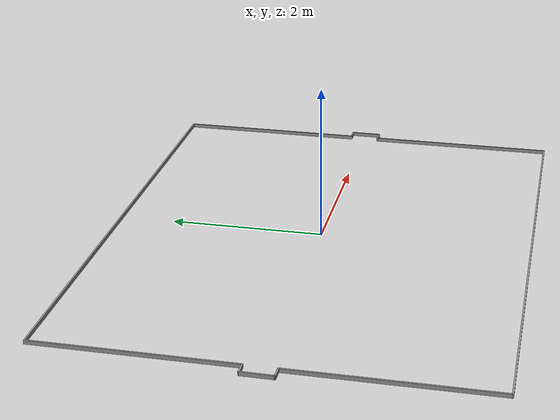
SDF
<?xml version='1.0'?>
<sdf version='1.6'>
  <model name='vsss_field_goal'>
    <pose frame=''>-0.001537 -5e-06 0 0 -0 0</pose>
    <link name='Wall_0'>
      <collision name='Wall_0_Collision'>
        <geometry>
          <box>
            <size>6.62 0.02 0.05</size>
          </box>
        </geometry>
        <pose frame=''>0 0 0.025 0 -0 0</pose>
      </collision>
      <visual name='Wall_0_Visual'>
        <pose frame=''>0 0 0.025 0 -0 0</pose>
        <geometry>
          <box>
            <size>6.62 0.02 0.05</size>
          </box>
        </geometry>
        <material>
          <script>
            <uri>file://media/materials/scripts/gazebo.material</uri>
            <name>Gazebo/Grey</name>
          </script>
          <ambient>1 1 1 1</ambient>
        </material>
        <meta>
          <layer>0</layer>
        </meta>
      </visual>
      <pose frame=''>0.001537 2.70001 0 0 -0 0</pose>
    </link>
    <link name='Wall_1'>
      <collision name='Wall_1_Collision'>
        <geometry>
          <box>
            <size>2.52 0.02 0.05</size>
          </box>
        </geometry>
        <pose frame=''>0 0 0.025 0 -0 0</pose>
      </collision>
      <visual name='Wall_1_Visual'>
        <pose frame=''>0 0 0.025 0 -0 0</pose>
        <geometry>
          <box>
            <size>2.52 0.02 0.05</size>
          </box>
        </geometry>
        <material>
          <script>
            <uri>file://media/materials/scripts/gazebo.material</uri>
            <name>Gazebo/Grey</name>
          </script>
          <ambient>1 1 1 1</ambient>
        </material>
        <meta>
          <layer>0</layer>
        </meta>
      </visual>
      <pose frame=''>3.30154 1.45001 0 0 -0 -1.5708</pose>
    </link>
    <link name='Wall_10'>
      <collision name='Wall_10_Collision'>
        <geometry>
          <box>
            <size>0.17 0.02 0.05</size>
          </box>
        </geometry>
        <pose frame=''>0 0 0.025 0 -0 0</pose>
      </collision>
      <visual name='Wall_10_Visual'>
        <pose frame=''>0 0 0.025 0 -0 0</pose>
        <geometry>
          <box>
            <size>0.17 0.02 0.05</size>
          </box>
        </geometry>
        <material>
          <script>
            <uri>file://media/materials/scripts/gazebo.material</uri>
            <name>Gazebo/Grey</name>
          </script>
          <ambient>1 1 1 1</ambient>
        </material>
        <meta>
          <layer>0</layer>
        </meta>
      </visual>
      <pose frame=''>-3.37346 0.200005 0 0 -0 0</pose>
    </link>
    <link name='Wall_11'>
      <collision name='Wall_11_Collision'>
        <geometry>
          <box>
            <size>2.52 0.02 0.05</size>
          </box>
        </geometry>
        <pose frame=''>0 0 0.025 0 -0 0</pose>
      </collision>
      <visual name='Wall_11_Visual'>
        <pose frame=''>0 0 0.025 0 -0 0</pose>
        <geometry>
          <box>
            <size>2.52 0.02 0.05</size>
          </box>
        </geometry>
        <material>
          <script>
            <uri>file://media/materials/scripts/gazebo.material</uri>
            <name>Gazebo/Grey</name>
          </script>
          <ambient>1 1 1 1</ambient>
        </material>
        <meta>
          <layer>0</layer>
        </meta>
      </visual>
      <pose frame=''>-3.29846 1.45001 0 0 -0 1.5708</pose>
    </link>
    <link name='Wall_2'>
      <collision name='Wall_2_Collision'>
        <geometry>
          <box>
            <size>0.17 0.02 0.05</size>
          </box>
        </geometry>
        <pose frame=''>0 0 0.025 0 -0 0</pose>
      </collision>
      <visual name='Wall_2_Visual'>
        <pose frame=''>0 0 0.025 0 -0 0</pose>
        <geometry>
          <box>
            <size>0.17 0.02 0.05</size>
          </box>
        </geometry>
        <material>
          <script>
            <uri>file://media/materials/scripts/gazebo.material</uri>
            <name>Gazebo/Grey</name>
          </script>
          <ambient>1 1 1 1</ambient>
        </material>
        <meta>
          <layer>0</layer>
        </meta>
      </visual>
      <pose frame=''>3.37654 0.200005 0 0 -0 0</pose>
    </link>
    <link name='Wall_3'>
      <collision name='Wall_3_Collision'>
        <geometry>
          <box>
            <size>0.42 0.02 0.05</size>
          </box>
        </geometry>
        <pose frame=''>0 0 0.025 0 -0 0</pose>
      </collision>
      <visual name='Wall_3_Visual'>
        <pose frame=''>0 0 0.025 0 -0 0</pose>
        <geometry>
          <box>
            <size>0.42 0.02 0.05</size>
          </box>
        </geometry>
        <material>
          <script>
            <uri>file://media/materials/scripts/gazebo.material</uri>
            <name>Gazebo/Grey</name>
          </script>
          <ambient>1 1 1 1</ambient>
        </material>
        <meta>
          <layer>0</layer>
        </meta>
      </visual>
      <pose frame=''>3.45154 5e-06 0 0 -0 -1.5708</pose>
    </link>
    <link name='Wall_4'>
      <collision name='Wall_4_Collision'>
        <geometry>
          <box>
            <size>0.17 0.02 0.05</size>
          </box>
        </geometry>
        <pose frame=''>0 0 0.025 0 -0 0</pose>
      </collision>
      <visual name='Wall_4_Visual'>
        <pose frame=''>0 0 0.025 0 -0 0</pose>
        <geometry>
          <box>
            <size>0.17 0.02 0.05</size>
          </box>
        </geometry>
        <material>
          <script>
            <uri>file://media/materials/scripts/gazebo.material</uri>
            <name>Gazebo/Grey</name>
          </script>
          <ambient>1 1 1 1</ambient>
        </material>
        <meta>
          <layer>0</layer>
        </meta>
      </visual>
      <pose frame=''>3.37654 -0.199995 0 0 -0 3.14159</pose>
    </link>
    <link name='Wall_5'>
      <collision name='Wall_5_Collision'>
        <geometry>
          <box>
            <size>2.52 0.02 0.05</size>
          </box>
        </geometry>
        <pose frame=''>0 0 0.025 0 -0 0</pose>
      </collision>
      <visual name='Wall_5_Visual'>
        <pose frame=''>0 0 0.025 0 -0 0</pose>
        <geometry>
          <box>
            <size>2.52 0.02 0.05</size>
          </box>
        </geometry>
        <material>
          <script>
            <uri>file://media/materials/scripts/gazebo.material</uri>
            <name>Gazebo/Grey</name>
          </script>
          <ambient>1 1 1 1</ambient>
        </material>
        <meta>
          <layer>0</layer>
        </meta>
      </visual>
      <pose frame=''>3.30154 -1.44999 0 0 -0 -1.5708</pose>
    </link>
    <link name='Wall_6'>
      <collision name='Wall_6_Collision'>
        <geometry>
          <box>
            <size>6.62 0.02 0.05</size>
          </box>
        </geometry>
        <pose frame=''>0 0 0.025 0 -0 0</pose>
      </collision>
      <visual name='Wall_6_Visual'>
        <pose frame=''>0 0 0.025 0 -0 0</pose>
        <geometry>
          <box>
            <size>6.62 0.02 0.05</size>
          </box>
        </geometry>
        <material>
          <script>
            <uri>file://media/materials/scripts/gazebo.material</uri>
            <name>Gazebo/Grey</name>
          </script>
          <ambient>1 1 1 1</ambient>
        </material>
        <meta>
          <layer>0</layer>
        </meta>
      </visual>
      <pose frame=''>0.001537 -2.69999 0 0 -0 3.14159</pose>
    </link>
    <link name='Wall_7'>
      <collision name='Wall_7_Collision'>
        <geometry>
          <box>
            <size>2.52 0.02 0.05</size>
          </box>
        </geometry>
        <pose frame=''>0 0 0.025 0 -0 0</pose>
      </collision>
      <visual name='Wall_7_Visual'>
        <pose frame=''>0 0 0.025 0 -0 0</pose>
        <geometry>
          <box>
            <size>2.52 0.02 0.05</size>
          </box>
        </geometry>
        <material>
          <script>
            <uri>file://media/materials/scripts/gazebo.material</uri>
            <name>Gazebo/Grey</name>
          </script>
          <ambient>1 1 1 1</ambient>
        </material>
        <meta>
          <layer>0</layer>
        </meta>
      </visual>
      <pose frame=''>-3.29996 -1.44999 0 0 -0 1.572</pose>
    </link>
    <link name='Wall_8'>
      <collision name='Wall_8_Collision'>
        <geometry>
          <box>
            <size>0.17 0.02 0.05</size>
          </box>
        </geometry>
        <pose frame=''>0 0 0.025 0 -0 0</pose>
      </collision>
      <visual name='Wall_8_Visual'>
        <pose frame=''>0 0 0.025 0 -0 0</pose>
        <geometry>
          <box>
            <size>0.17 0.02 0.05</size>
          </box>
        </geometry>
        <material>
          <script>
            <uri>file://media/materials/scripts/gazebo.material</uri>
            <name>Gazebo/Grey</name>
          </script>
          <ambient>1 1 1 1</ambient>
        </material>
        <meta>
          <layer>0</layer>
        </meta>
      </visual>
      <pose frame=''>-3.37646 -0.199995 0 0 -0 3.14159</pose>
    </link>
    <link name='Wall_9'>
      <collision name='Wall_9_Collision'>
        <geometry>
          <box>
            <size>0.42 0.02 0.05</size>
          </box>
        </geometry>
        <pose frame=''>0 0 0.025 0 -0 0</pose>
      </collision>
      <visual name='Wall_9_Visual'>
        <pose frame=''>0 0 0.025 0 -0 0</pose>
        <geometry>
          <box>
            <size>0.42 0.02 0.05</size>
          </box>
        </geometry>
        <material>
          <script>
            <uri>file://media/materials/scripts/gazebo.material</uri>
            <name>Gazebo/Grey</name>
          </script>
          <ambient>1 1 1 1</ambient>
        </material>
        <meta>
          <layer>0</layer>
        </meta>
      </visual>
      <pose frame=''>-3.44996 5e-06 0 0 -0 1.5633</pose>
    </link>
    <static>1</static>
  </model>
</sdf>
